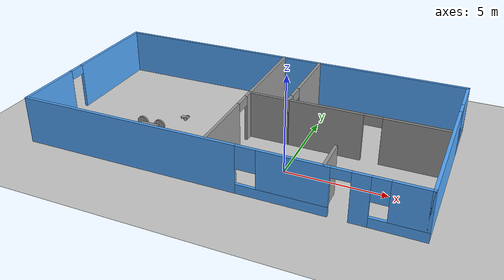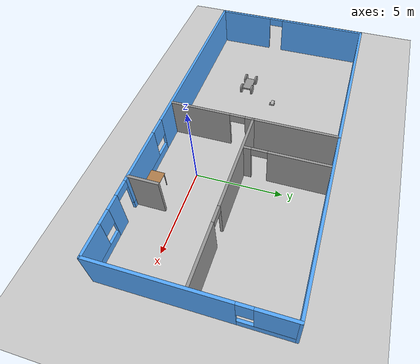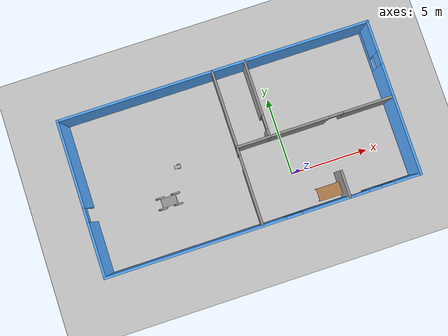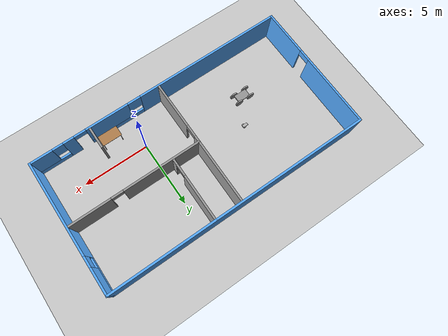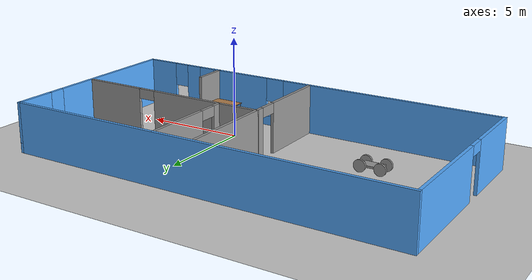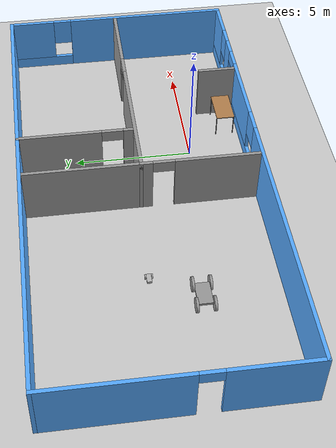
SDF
<sdf version="1.6">
 <world name="default">
  <plugin name="welcome_message" filename="libwelcome_message.so"/>
  <light name="sun" type="directional">
   <pose>0 0 10 0 -0 0</pose>
   <diffuse>0.8 0.8 0.8 1</diffuse>
   <specular>0.2 0.2 0.2 1</specular>
   <attenuation>
    <range>1000</range>
    <constant>0.9</constant>
    <linear>0.01</linear>
    <quadratic>0.001</quadratic>
   </attenuation>
   <direction>-0.5 0.1 -0.9</direction>
  </light>
  <model name="ground_plane">
   <static>1</static>
   <link name="link">
    <collision name="collision">
     <geometry><plane><normal>0 0 1</normal><size>100 100</size></plane></geometry>
     <surface>
      <contact><collide_bitmask>65535</collide_bitmask></contact>
      <friction><ode><mu>100</mu><mu2>50</mu2></ode></friction>
     </surface>
    </collision>
    <visual name="visual">
     <cast_shadows>0</cast_shadows>
     <geometry><plane><normal>0 0 1</normal><size>100 100</size></plane></geometry>
     <material>
      <script><uri>file://media/materials/scripts/gazebo.material</uri><name>Gazebo/Grey</name></script>
     </material>
    </visual>
   </link>
  </model>
  <gravity>0 0 -9.8</gravity>
  <magnetic_field>6e-06 2.3e-05 -4.2e-05</magnetic_field>
  <atmosphere type="adiabatic"/>
  <physics name="default_physics" default="0" type="ode">
   <max_step_size>0.001</max_step_size>
   <real_time_factor>1</real_time_factor>
   <real_time_update_rate>1000</real_time_update_rate>
  </physics>
  <scene><ambient>0.4 0.4 0.4 1</ambient><background>0.7 0.7 0.7 1</background><shadows>1</shadows></scene>
  <spherical_coordinates>
   <surface_model>EARTH_WGS84</surface_model>
   <latitude_deg>0</latitude_deg>
   <longitude_deg>0</longitude_deg>
   <elevation>0</elevation>
   <heading_deg>0</heading_deg>
  </spherical_coordinates>
  <model name="FourWheelRobot">
   <link name="link_0">
    <inertial>
     <mass>1</mass>
     <inertia>
      <ixx>0.166667</ixx>
      <ixy>0</ixy>
      <ixz>0</ixz>
      <iyy>0.166667</iyy>
      <iyz>0</iyz>
      <izz>0.166667</izz>
     </inertia>
    </inertial>
    <visual name="visual">
     <geometry><box><size>1 0.6 0.1</size></box></geometry>
     <material>
      <lighting>1</lighting>
      <script><uri>file://media/materials/scripts/gazebo.material</uri><name>Gazebo/Grey</name></script>
      <shader type="pixel"><normal_map>__default__</normal_map></shader>
      <ambient>0.3 0.3 0.3 1</ambient>
      <diffuse>0.7 0.7 0.7 1</diffuse>
      <specular>0.01 0.01 0.01 1</specular>
      <emissive>0 0 0 1</emissive>
     </material>
    </visual>
    <collision name="collision">
     <geometry><box><size>1 0.6 0.1</size></box></geometry>
     <surface>
      <friction>
       <ode><mu>1</mu><mu2>1</mu2><fdir1>0 0 0</fdir1><slip1>0</slip1><slip2>0</slip2></ode>
       <torsional>
        <coefficient>1</coefficient>
        <patch_radius>0</patch_radius>
        <surface_radius>0</surface_radius>
        <use_patch_radius>1</use_patch_radius>
        <ode><slip>0</slip></ode>
       </torsional>
      </friction>
      <bounce><restitution_coefficient>0</restitution_coefficient><threshold>1e+06</threshold></bounce>
      <contact>
       <collide_without_contact>0</collide_without_contact>
       <collide_without_contact_bitmask>1</collide_without_contact_bitmask>
       <collide_bitmask>1</collide_bitmask>
       <ode>
        <soft_cfm>0</soft_cfm>
        <soft_erp>0.2</soft_erp>
        <kp>1e+13</kp>
        <kd>1</kd>
        <max_vel>0.01</max_vel>
        <min_depth>0</min_depth>
       </ode>
       <bullet>
        <split_impulse>1</split_impulse>
        <split_impulse_penetration_threshold>-0.01</split_impulse_penetration_threshold>
        <soft_cfm>0</soft_cfm>
        <soft_erp>0.2</soft_erp>
        <kp>1e+13</kp>
        <kd>1</kd>
       </bullet>
      </contact>
     </surface>
    </collision>
   </link>
   <link name="link_1">
    <pose>-0.5 -0.350029 0 1.5707 -0 0</pose>
    <inertial>
     <mass>1</mass>
     <inertia><ixx>0.145833</ixx><ixy>0</ixy><ixz>0</ixz><iyy>0.145833</iyy><iyz>0</iyz><izz>0.125</izz></inertia>
    </inertial>
    <visual name="visual">
     <geometry><cylinder><radius>0.3</radius><length>0.1</length></cylinder></geometry>
     <material>
      <lighting>1</lighting>
      <script><uri>file://media/materials/scripts/gazebo.material</uri><name>Gazebo/Grey</name></script>
      <shader type="pixel"><normal_map>__default__</normal_map></shader>
      <ambient>0.3 0.3 0.3 1</ambient>
      <diffuse>0.7 0.7 0.7 1</diffuse>
      <specular>0.01 0.01 0.01 1</specular>
      <emissive>0 0 0 1</emissive>
     </material>
    </visual>
    <collision name="collision">
     <geometry><cylinder><radius>0.3</radius><length>0.1</length></cylinder></geometry>
     <surface>
      <friction>
       <ode><mu>1</mu><mu2>1</mu2><fdir1>0 0 0</fdir1><slip1>0</slip1><slip2>0</slip2></ode>
       <torsional>
        <coefficient>1</coefficient>
        <patch_radius>0</patch_radius>
        <surface_radius>0</surface_radius>
        <use_patch_radius>1</use_patch_radius>
        <ode><slip>0</slip></ode>
       </torsional>
      </friction>
      <bounce><restitution_coefficient>0</restitution_coefficient><threshold>1e+06</threshold></bounce>
      <contact>
       <collide_without_contact>0</collide_without_contact>
       <collide_without_contact_bitmask>1</collide_without_contact_bitmask>
       <collide_bitmask>1</collide_bitmask>
       <ode>
        <soft_cfm>0</soft_cfm>
        <soft_erp>0.2</soft_erp>
        <kp>1e+13</kp>
        <kd>1</kd>
        <max_vel>0.01</max_vel>
        <min_depth>0</min_depth>
       </ode>
       <bullet>
        <split_impulse>1</split_impulse>
        <split_impulse_penetration_threshold>-0.01</split_impulse_penetration_threshold>
        <soft_cfm>0</soft_cfm>
        <soft_erp>0.2</soft_erp>
        <kp>1e+13</kp>
        <kd>1</kd>
       </bullet>
      </contact>
     </surface>
    </collision>
   </link>
   <link name="link_1_clone">
    <pose>-0.5 0.350029 0 1.5707 -0 0</pose>
    <inertial>
     <mass>1</mass>
     <inertia><ixx>0.145833</ixx><ixy>0</ixy><ixz>0</ixz><iyy>0.145833</iyy><iyz>0</iyz><izz>0.125</izz></inertia>
    </inertial>
    <visual name="visual">
     <geometry><cylinder><radius>0.3</radius><length>0.1</length></cylinder></geometry>
     <material>
      <lighting>1</lighting>
      <script><uri>file://media/materials/scripts/gazebo.material</uri><name>Gazebo/Grey</name></script>
      <shader type="pixel"><normal_map>__default__</normal_map></shader>
      <ambient>0.3 0.3 0.3 1</ambient>
      <diffuse>0.7 0.7 0.7 1</diffuse>
      <specular>0.01 0.01 0.01 1</specular>
      <emissive>0 0 0 1</emissive>
     </material>
    </visual>
    <collision name="collision">
     <geometry><cylinder><radius>0.3</radius><length>0.1</length></cylinder></geometry>
     <surface>
      <friction>
       <ode><mu>1</mu><mu2>1</mu2><fdir1>0 0 0</fdir1><slip1>0</slip1><slip2>0</slip2></ode>
       <torsional>
        <coefficient>1</coefficient>
        <patch_radius>0</patch_radius>
        <surface_radius>0</surface_radius>
        <use_patch_radius>1</use_patch_radius>
        <ode><slip>0</slip></ode>
       </torsional>
      </friction>
      <bounce><restitution_coefficient>0</restitution_coefficient><threshold>1e+06</threshold></bounce>
      <contact>
       <collide_without_contact>0</collide_without_contact>
       <collide_without_contact_bitmask>1</collide_without_contact_bitmask>
       <collide_bitmask>1</collide_bitmask>
       <ode>
        <soft_cfm>0</soft_cfm>
        <soft_erp>0.2</soft_erp>
        <kp>1e+13</kp>
        <kd>1</kd>
        <max_vel>0.01</max_vel>
        <min_depth>0</min_depth>
       </ode>
       <bullet>
        <split_impulse>1</split_impulse>
        <split_impulse_penetration_threshold>-0.01</split_impulse_penetration_threshold>
        <soft_cfm>0</soft_cfm>
        <soft_erp>0.2</soft_erp>
        <kp>1e+13</kp>
        <kd>1</kd>
       </bullet>
      </contact>
     </surface>
    </collision>
   </link>
   <link name="link_1_clone_0">
    <pose>0.5 -0.350029 0 1.5707 -0 0</pose>
    <inertial>
     <mass>1</mass>
     <inertia><ixx>0.145833</ixx><ixy>0</ixy><ixz>0</ixz><iyy>0.145833</iyy><iyz>0</iyz><izz>0.125</izz></inertia>
    </inertial>
    <visual name="visual">
     <geometry><cylinder><radius>0.3</radius><length>0.1</length></cylinder></geometry>
     <material>
      <lighting>1</lighting>
      <script><uri>file://media/materials/scripts/gazebo.material</uri><name>Gazebo/Grey</name></script>
      <shader type="pixel"><normal_map>__default__</normal_map></shader>
      <ambient>0.3 0.3 0.3 1</ambient>
      <diffuse>0.7 0.7 0.7 1</diffuse>
      <specular>0.01 0.01 0.01 1</specular>
      <emissive>0 0 0 1</emissive>
     </material>
    </visual>
    <collision name="collision">
     <geometry><cylinder><radius>0.3</radius><length>0.1</length></cylinder></geometry>
     <surface>
      <friction>
       <ode><mu>1</mu><mu2>1</mu2><fdir1>0 0 0</fdir1><slip1>0</slip1><slip2>0</slip2></ode>
       <torsional>
        <coefficient>1</coefficient>
        <patch_radius>0</patch_radius>
        <surface_radius>0</surface_radius>
        <use_patch_radius>1</use_patch_radius>
        <ode><slip>0</slip></ode>
       </torsional>
      </friction>
      <bounce><restitution_coefficient>0</restitution_coefficient><threshold>1e+06</threshold></bounce>
      <contact>
       <collide_without_contact>0</collide_without_contact>
       <collide_without_contact_bitmask>1</collide_without_contact_bitmask>
       <collide_bitmask>1</collide_bitmask>
       <ode>
        <soft_cfm>0</soft_cfm>
        <soft_erp>0.2</soft_erp>
        <kp>1e+13</kp>
        <kd>1</kd>
        <max_vel>0.01</max_vel>
        <min_depth>0</min_depth>
       </ode>
       <bullet>
        <split_impulse>1</split_impulse>
        <split_impulse_penetration_threshold>-0.01</split_impulse_penetration_threshold>
        <soft_cfm>0</soft_cfm>
        <soft_erp>0.2</soft_erp>
        <kp>1e+13</kp>
        <kd>1</kd>
       </bullet>
      </contact>
     </surface>
    </collision>
   </link>
   <link name="link_1_clone_1">
    <pose>0.5 0.350029 0 1.5707 -0 0</pose>
    <inertial>
     <mass>1</mass>
     <inertia><ixx>0.145833</ixx><ixy>0</ixy><ixz>0</ixz><iyy>0.145833</iyy><iyz>0</iyz><izz>0.125</izz></inertia>
    </inertial>
    <visual name="visual">
     <geometry><cylinder><radius>0.3</radius><length>0.1</length></cylinder></geometry>
     <material>
      <lighting>1</lighting>
      <script><uri>file://media/materials/scripts/gazebo.material</uri><name>Gazebo/Grey</name></script>
      <shader type="pixel"><normal_map>__default__</normal_map></shader>
      <ambient>0.3 0.3 0.3 1</ambient>
      <diffuse>0.7 0.7 0.7 1</diffuse>
      <specular>0.01 0.01 0.01 1</specular>
      <emissive>0 0 0 1</emissive>
     </material>
    </visual>
    <collision name="collision">
     <geometry><cylinder><radius>0.3</radius><length>0.1</length></cylinder></geometry>
     <surface>
      <friction>
       <ode><mu>1</mu><mu2>1</mu2><fdir1>0 0 0</fdir1><slip1>0</slip1><slip2>0</slip2></ode>
       <torsional>
        <coefficient>1</coefficient>
        <patch_radius>0</patch_radius>
        <surface_radius>0</surface_radius>
        <use_patch_radius>1</use_patch_radius>
        <ode><slip>0</slip></ode>
       </torsional>
      </friction>
      <bounce><restitution_coefficient>0</restitution_coefficient><threshold>1e+06</threshold></bounce>
      <contact>
       <collide_without_contact>0</collide_without_contact>
       <collide_without_contact_bitmask>1</collide_without_contact_bitmask>
       <collide_bitmask>1</collide_bitmask>
       <ode>
        <soft_cfm>0</soft_cfm>
        <soft_erp>0.2</soft_erp>
        <kp>1e+13</kp>
        <kd>1</kd>
        <max_vel>0.01</max_vel>
        <min_depth>0</min_depth>
       </ode>
       <bullet>
        <split_impulse>1</split_impulse>
        <split_impulse_penetration_threshold>-0.01</split_impulse_penetration_threshold>
        <soft_cfm>0</soft_cfm>
        <soft_erp>0.2</soft_erp>
        <kp>1e+13</kp>
        <kd>1</kd>
       </bullet>
      </contact>
     </surface>
    </collision>
   </link>
   <joint name="link_0_JOINT_1" type="revolute">
    <parent>link_0</parent>
    <child>link_1</child>
    <axis>
     <xyz>0 0 1</xyz>
     <use_parent_model_frame>0</use_parent_model_frame>
     <limit>
      <lower>-1.79769e+308</lower>
      <upper>1.79769e+308</upper>
      <effort>-1</effort>
      <velocity>-1</velocity>
     </limit>
     <dynamics>
      <spring_reference>0</spring_reference>
      <spring_stiffness>0</spring_stiffness>
      <damping>0</damping>
      <friction>0</friction>
     </dynamics>
    </axis>
    <physics>
     <ode><limit><cfm>0</cfm><erp>0.2</erp></limit><suspension><cfm>0</cfm><erp>0.2</erp></suspension></ode>
    </physics>
   </joint>
   <joint name="link_0_JOINT_2" type="revolute">
    <parent>link_0</parent>
    <child>link_1_clone</child>
    <axis>
     <xyz>0 0 1</xyz>
     <use_parent_model_frame>0</use_parent_model_frame>
     <limit>
      <lower>-1.79769e+308</lower>
      <upper>1.79769e+308</upper>
      <effort>-1</effort>
      <velocity>-1</velocity>
     </limit>
     <dynamics>
      <spring_reference>0</spring_reference>
      <spring_stiffness>0</spring_stiffness>
      <damping>0</damping>
      <friction>0</friction>
     </dynamics>
    </axis>
    <physics>
     <ode><limit><cfm>0</cfm><erp>0.2</erp></limit><suspension><cfm>0</cfm><erp>0.2</erp></suspension></ode>
    </physics>
   </joint>
   <joint name="link_0_JOINT_4" type="revolute">
    <parent>link_0</parent>
    <child>link_1_clone_0</child>
    <axis>
     <xyz>0 0 1</xyz>
     <use_parent_model_frame>0</use_parent_model_frame>
     <limit>
      <lower>-1.79769e+308</lower>
      <upper>1.79769e+308</upper>
      <effort>-1</effort>
      <velocity>-1</velocity>
     </limit>
     <dynamics>
      <spring_reference>0</spring_reference>
      <spring_stiffness>0</spring_stiffness>
      <damping>0</damping>
     </dynamics>
    </axis>
    <physics>
     <ode><limit><cfm>0</cfm><erp>0.2</erp></limit><suspension><cfm>0</cfm><erp>0.2</erp></suspension></ode>
    </physics>
   </joint>
   <joint name="link_0_JOINT_5" type="revolute">
    <parent>link_0</parent>
    <child>link_1_clone_1</child>
    <axis>
     <xyz>0 0 1</xyz>
     <use_parent_model_frame>0</use_parent_model_frame>
     <limit>
      <lower>-1.79769e+308</lower>
      <upper>1.79769e+308</upper>
      <effort>-1</effort>
      <velocity>-1</velocity>
     </limit>
     <dynamics>
      <spring_reference>0</spring_reference>
      <spring_stiffness>0</spring_stiffness>
      <damping>0</damping>
      <friction>0</friction>
     </dynamics>
    </axis>
    <physics>
     <ode><limit><cfm>0</cfm><erp>0.2</erp></limit><suspension><cfm>0</cfm><erp>0.2</erp></suspension></ode>
    </physics>
   </joint>
   <static>0</static>
   <pose>-7.95645 0.76925 0.300003 4e-06 -0 7e-06</pose>
   <plugin name="model_push" filename="libmodel_push.so"/>
  </model>
  <model name="Building">
   <pose>-2.8026 2.46672 0 0 -0 0</pose>
   <link name="Wall_12">
    <pose>-9.925 0 0 0 0 -1.5708</pose>
    <visual name="Wall_12_Visual_0">
     <pose>-2.20711 0 1.25 0 -0 0</pose>
     <geometry><box><size>5.58577 0.15 2.5</size></box></geometry>
     <material>
      <script><uri>file://media/materials/scripts/gazebo.material</uri><name>Gazebo/Grey</name></script>
      <ambient>0.333333 0.666667 1 1</ambient>
     </material>
     <meta><layer>0</layer></meta>
    </visual>
    <collision name="Wall_12_Collision_0">
     <geometry><box><size>5.58577 0.15 2.5</size></box></geometry>
     <pose>-2.20711 0 1.25 0 -0 0</pose>
    </collision>
    <visual name="Wall_12_Visual_1">
     <pose>3.24288 0 1.25 0 -0 0</pose>
     <geometry><box><size>3.51423 0.15 2.5</size></box></geometry>
     <material>
      <script><uri>file://media/materials/scripts/gazebo.material</uri><name>Gazebo/Grey</name></script>
      <ambient>0.333333 0.666667 1 1</ambient>
     </material>
     <meta><layer>0</layer></meta>
    </visual>
    <collision name="Wall_12_Collision_1">
     <geometry><box><size>3.51423 0.15 2.5</size></box></geometry>
     <pose>3.24288 0 1.25 0 -0 0</pose>
    </collision>
    <visual name="Wall_12_Visual_2">
     <pose>1.03577 0 2.25 0 -0 0</pose>
     <geometry><box><size>0.9 0.15 0.5</size></box></geometry>
     <material>
      <script><uri>file://media/materials/scripts/gazebo.material</uri><name>Gazebo/Grey</name></script>
      <ambient>0.333333 0.666667 1 1</ambient>
     </material>
     <meta><layer>0</layer></meta>
    </visual>
    <collision name="Wall_12_Collision_2">
     <geometry><box><size>0.9 0.15 0.5</size></box></geometry>
     <pose>1.03577 0 2.25 0 -0 0</pose>
    </collision>
   </link>
   <link name="Wall_13">
    <pose>0 -4.925 0 0 -0 0</pose>
    <visual name="Wall_13_Visual_0">
     <pose>-4.29 0 1.25 0 -0 0</pose>
     <geometry><box><size>11.42 0.15 2.5</size></box></geometry>
     <material>
      <script><uri>file://media/materials/scripts/gazebo.material</uri><name>Gazebo/Grey</name></script>
      <ambient>0.333333 0.666667 1 1</ambient>
     </material>
     <meta><layer>0</layer></meta>
    </visual>
    <collision name="Wall_13_Collision_0">
     <geometry><box><size>11.42 0.15 2.5</size></box></geometry>
     <pose>-4.29 0 1.25 0 -0 0</pose>
    </collision>
    <visual name="Wall_13_Visual_1">
     <pose>7.03883 0 1.25 0 -0 0</pose>
     <geometry><box><size>0.825812 0.15 2.5</size></box></geometry>
     <material>
      <script><uri>file://media/materials/scripts/gazebo.material</uri><name>Gazebo/Grey</name></script>
      <ambient>0.333333 0.666667 1 1</ambient>
     </material>
     <meta><layer>0</layer></meta>
    </visual>
    <collision name="Wall_13_Collision_1">
     <geometry><box><size>0.825812 0.15 2.5</size></box></geometry>
     <pose>7.03883 0 1.25 0 -0 0</pose>
    </collision>
    <visual name="Wall_13_Visual_2">
     <pose>3.57297 0 0.25 0 -0 0</pose>
     <geometry><box><size>4.30591 0.15 0.5</size></box></geometry>
     <material>
      <script><uri>file://media/materials/scripts/gazebo.material</uri><name>Gazebo/Grey</name></script>
      <ambient>0.333333 0.666667 1 1</ambient>
     </material>
     <meta><layer>0</layer></meta>
    </visual>
    <collision name="Wall_13_Collision_2">
     <geometry><box><size>4.30591 0.15 0.5</size></box></geometry>
     <pose>3.57297 0 0.25 0 -0 0</pose>
    </collision>
    <visual name="Wall_13_Visual_3">
     <pose>8.72587 0 0.25 0 -0 0</pose>
     <geometry><box><size>2.54827 0.15 0.5</size></box></geometry>
     <material>
      <script><uri>file://media/materials/scripts/gazebo.material</uri><name>Gazebo/Grey</name></script>
      <ambient>0.333333 0.666667 1 1</ambient>
     </material>
     <meta><layer>0</layer></meta>
    </visual>
    <collision name="Wall_13_Collision_3">
     <geometry><box><size>2.54827 0.15 0.5</size></box></geometry>
     <pose>8.72587 0 0.25 0 -0 0</pose>
    </collision>
    <visual name="Wall_13_Visual_4">
     <pose>4.07297 0 1.5 0 -0 0</pose>
     <geometry><box><size>3.30591 0.15 2</size></box></geometry>
     <material>
      <script><uri>file://media/materials/scripts/gazebo.material</uri><name>Gazebo/Grey</name></script>
      <ambient>0.333333 0.666667 1 1</ambient>
     </material>
     <meta><layer>0</layer></meta>
    </visual>
    <collision name="Wall_13_Collision_4">
     <geometry><box><size>3.30591 0.15 2</size></box></geometry>
     <pose>4.07297 0 1.5 0 -0 0</pose>
    </collision>
    <visual name="Wall_13_Visual_5">
     <pose>4.07297 0 1.5 0 -0 0</pose>
     <geometry><box><size>3.30591 0.15 2</size></box></geometry>
     <material>
      <script><uri>file://media/materials/scripts/gazebo.material</uri><name>Gazebo/Grey</name></script>
      <ambient>0.333333 0.666667 1 1</ambient>
     </material>
     <meta><layer>0</layer></meta>
    </visual>
    <collision name="Wall_13_Collision_5">
     <geometry><box><size>3.30591 0.15 2</size></box></geometry>
     <pose>4.07297 0 1.5 0 -0 0</pose>
    </collision>
    <visual name="Wall_13_Visual_6">
     <pose>9.12587 0 1.5 0 -0 0</pose>
     <geometry><box><size>1.74827 0.15 2</size></box></geometry>
     <material>
      <script><uri>file://media/materials/scripts/gazebo.material</uri><name>Gazebo/Grey</name></script>
      <ambient>0.333333 0.666667 1 1</ambient>
     </material>
     <meta><layer>0</layer></meta>
    </visual>
    <collision name="Wall_13_Collision_6">
     <geometry><box><size>1.74827 0.15 2</size></box></geometry>
     <pose>9.12587 0 1.5 0 -0 0</pose>
    </collision>
    <visual name="Wall_13_Visual_7">
     <pose>1.92001 0 1.9 0 -0 0</pose>
     <geometry><box><size>1 0.15 1.2</size></box></geometry>
     <material>
      <script><uri>file://media/materials/scripts/gazebo.material</uri><name>Gazebo/Grey</name></script>
      <ambient>0.333333 0.666667 1 1</ambient>
     </material>
     <meta><layer>0</layer></meta>
    </visual>
    <collision name="Wall_13_Collision_7">
     <geometry><box><size>1 0.15 1.2</size></box></geometry>
     <pose>1.92001 0 1.9 0 -0 0</pose>
    </collision>
    <visual name="Wall_13_Visual_8">
     <pose>7.85173 0 1.9 0 -0 0</pose>
     <geometry><box><size>0.8 0.15 1.2</size></box></geometry>
     <material>
      <script><uri>file://media/materials/scripts/gazebo.material</uri><name>Gazebo/Grey</name></script>
      <ambient>0.333333 0.666667 1 1</ambient>
     </material>
     <meta><layer>0</layer></meta>
    </visual>
    <collision name="Wall_13_Collision_8">
     <geometry><box><size>0.8 0.15 1.2</size></box></geometry>
     <pose>7.85173 0 1.9 0 -0 0</pose>
    </collision>
    <visual name="Wall_13_Visual_9">
     <pose>6.17592 0 2.25 0 -0 0</pose>
     <geometry><box><size>0.9 0.15 0.5</size></box></geometry>
     <material>
      <script><uri>file://media/materials/scripts/gazebo.material</uri><name>Gazebo/Grey</name></script>
      <ambient>0.333333 0.666667 1 1</ambient>
     </material>
     <meta><layer>0</layer></meta>
    </visual>
    <collision name="Wall_13_Collision_9">
     <geometry><box><size>0.9 0.15 0.5</size></box></geometry>
     <pose>6.17592 0 2.25 0 -0 0</pose>
    </collision>
    <visual name="Wall_13_Visual_10">
     <pose>6.17592 0 2.25 0 -0 0</pose>
     <geometry><box><size>0.9 0.15 0.5</size></box></geometry>
     <material>
      <script><uri>file://media/materials/scripts/gazebo.material</uri><name>Gazebo/Grey</name></script>
      <ambient>0.333333 0.666667 1 1</ambient>
     </material>
     <meta><layer>0</layer></meta>
    </visual>
    <collision name="Wall_13_Collision_10">
     <geometry><box><size>0.9 0.15 0.5</size></box></geometry>
     <pose>6.17592 0 2.25 0 -0 0</pose>
    </collision>
   </link>
   <link name="Wall_14">
    <pose>9.925 0 0 0 -0 1.5708</pose>
    <visual name="Wall_14_Visual_0">
     <pose>-1.42237 0 1.25 0 -0 0</pose>
     <geometry><box><size>7.15526 0.15 2.5</size></box></geometry>
     <material>
      <script><uri>file://media/materials/scripts/gazebo.material</uri><name>Gazebo/Grey</name></script>
      <ambient>0.333333 0.666667 1 1</ambient>
     </material>
     <meta><layer>0</layer></meta>
    </visual>
    <collision name="Wall_14_Collision_0">
     <geometry><box><size>7.15526 0.15 2.5</size></box></geometry>
     <pose>-1.42237 0 1.25 0 -0 0</pose>
    </collision>
    <visual name="Wall_14_Visual_1">
     <pose>3.57763 0 0.25 0 -0 0</pose>
     <geometry><box><size>2.84474 0.15 0.5</size></box></geometry>
     <material>
      <script><uri>file://media/materials/scripts/gazebo.material</uri><name>Gazebo/Grey</name></script>
      <ambient>0.333333 0.666667 1 1</ambient>
     </material>
     <meta><layer>0</layer></meta>
    </visual>
    <collision name="Wall_14_Collision_1">
     <geometry><box><size>2.84474 0.15 0.5</size></box></geometry>
     <pose>3.57763 0 0.25 0 -0 0</pose>
    </collision>
    <visual name="Wall_14_Visual_2">
     <pose>3.97763 0 1.5 0 -0 0</pose>
     <geometry><box><size>2.04474 0.15 2</size></box></geometry>
     <material>
      <script><uri>file://media/materials/scripts/gazebo.material</uri><name>Gazebo/Grey</name></script>
      <ambient>0.333333 0.666667 1 1</ambient>
     </material>
     <meta><layer>0</layer></meta>
    </visual>
    <collision name="Wall_14_Collision_2">
     <geometry><box><size>2.04474 0.15 2</size></box></geometry>
     <pose>3.97763 0 1.5 0 -0 0</pose>
    </collision>
    <visual name="Wall_14_Visual_3">
     <pose>2.55526 0 1.9 0 -0 0</pose>
     <geometry><box><size>0.8 0.15 1.2</size></box></geometry>
     <material>
      <script><uri>file://media/materials/scripts/gazebo.material</uri><name>Gazebo/Grey</name></script>
      <ambient>0.333333 0.666667 1 1</ambient>
     </material>
     <meta><layer>0</layer></meta>
    </visual>
    <collision name="Wall_14_Collision_3">
     <geometry><box><size>0.8 0.15 1.2</size></box></geometry>
     <pose>2.55526 0 1.9 0 -0 0</pose>
    </collision>
   </link>
   <link name="Wall_15">
    <collision name="Wall_15_Collision">
     <geometry><box><size>20 0.15 2.5</size></box></geometry>
     <pose>0 0 1.25 0 -0 0</pose>
    </collision>
    <visual name="Wall_15_Visual">
     <pose>0 0 1.25 0 -0 0</pose>
     <geometry><box><size>20 0.15 2.5</size></box></geometry>
     <material>
      <script><uri>file://media/materials/scripts/gazebo.material</uri><name>Gazebo/Grey</name></script>
      <ambient>0.333333 0.666667 1 1</ambient>
     </material>
     <meta><layer>0</layer></meta>
    </visual>
    <pose>0 4.925 0 0 -0 3.14159</pose>
   </link>
   <link name="Wall_32">
    <collision name="Wall_32_Collision">
     <geometry><box><size>5 0.15 2.5</size></box></geometry>
     <pose>0 0 1.25 0 -0 0</pose>
    </collision>
    <visual name="Wall_32_Visual">
     <pose>0 0 1.25 0 -0 0</pose>
     <geometry><box><size>5 0.15 2.5</size></box></geometry>
     <material>
      <script><uri>file://media/materials/scripts/gazebo.material</uri><name>Gazebo/Grey</name></script>
      <ambient>1 1 1 1</ambient>
     </material>
     <meta><layer>0</layer></meta>
    </visual>
    <pose>-0.075125 2.47107 0 0 0 -1.5708</pose>
   </link>
   <link name="Wall_33">
    <pose>4.84987 0.046075 0 0 -0 0</pose>
    <visual name="Wall_33_Visual_0">
     <pose>-2.02208 0 1.25 0 -0 0</pose>
     <geometry><box><size>5.95585 0.15 2.5</size></box></geometry>
     <material>
      <script><uri>file://media/materials/scripts/gazebo.material</uri><name>Gazebo/Grey</name></script>
      <ambient>1 1 1 1</ambient>
     </material>
     <meta><layer>0</layer></meta>
    </visual>
    <collision name="Wall_33_Collision_0">
     <geometry><box><size>5.95585 0.15 2.5</size></box></geometry>
     <pose>-2.02208 0 1.25 0 -0 0</pose>
    </collision>
    <visual name="Wall_33_Visual_1">
     <pose>3.42792 0 1.25 0 -0 0</pose>
     <geometry><box><size>3.14415 0.15 2.5</size></box></geometry>
     <material>
      <script><uri>file://media/materials/scripts/gazebo.material</uri><name>Gazebo/Grey</name></script>
      <ambient>1 1 1 1</ambient>
     </material>
     <meta><layer>0</layer></meta>
    </visual>
    <collision name="Wall_33_Collision_1">
     <geometry><box><size>3.14415 0.15 2.5</size></box></geometry>
     <pose>3.42792 0 1.25 0 -0 0</pose>
    </collision>
    <visual name="Wall_33_Visual_2">
     <pose>1.40585 0 2.25 0 -0 0</pose>
     <geometry><box><size>0.9 0.15 0.5</size></box></geometry>
     <material>
      <script><uri>file://media/materials/scripts/gazebo.material</uri><name>Gazebo/Grey</name></script>
      <ambient>1 1 1 1</ambient>
     </material>
     <meta><layer>0</layer></meta>
    </visual>
    <collision name="Wall_33_Collision_2">
     <geometry><box><size>0.9 0.15 0.5</size></box></geometry>
     <pose>1.40585 0 2.25 0 -0 0</pose>
    </collision>
   </link>
   <link name="Wall_35">
    <pose>1.99969 2.47107 0 0 0 -1.5708</pose>
    <visual name="Wall_35_Visual_0">
     <pose>-0.732385 0 1.25 0 -0 0</pose>
     <geometry><box><size>3.53523 0.15 2.5</size></box></geometry>
     <material>
      <script><uri>file://media/materials/scripts/gazebo.material</uri><name>Gazebo/Grey</name></script>
      <ambient>1 1 1 1</ambient>
     </material>
     <meta><layer>0</layer></meta>
    </visual>
    <collision name="Wall_35_Collision_0">
     <geometry><box><size>3.53523 0.15 2.5</size></box></geometry>
     <pose>-0.732385 0 1.25 0 -0 0</pose>
    </collision>
    <visual name="Wall_35_Visual_1">
     <pose>2.21761 0 1.25 0 -0 0</pose>
     <geometry><box><size>0.564771 0.15 2.5</size></box></geometry>
     <material>
      <script><uri>file://media/materials/scripts/gazebo.material</uri><name>Gazebo/Grey</name></script>
      <ambient>1 1 1 1</ambient>
     </material>
     <meta><layer>0</layer></meta>
    </visual>
    <collision name="Wall_35_Collision_1">
     <geometry><box><size>0.564771 0.15 2.5</size></box></geometry>
     <pose>2.21761 0 1.25 0 -0 0</pose>
    </collision>
    <visual name="Wall_35_Visual_2">
     <pose>1.48523 0 2.25 0 -0 0</pose>
     <geometry><box><size>0.9 0.15 0.5</size></box></geometry>
     <material>
      <script><uri>file://media/materials/scripts/gazebo.material</uri><name>Gazebo/Grey</name></script>
      <ambient>1 1 1 1</ambient>
     </material>
     <meta><layer>0</layer></meta>
    </visual>
    <collision name="Wall_35_Collision_2">
     <geometry><box><size>0.9 0.15 0.5</size></box></geometry>
     <pose>1.48523 0 2.25 0 -0 0</pose>
    </collision>
   </link>
   <link name="Wall_37">
    <pose>-0.075125 -2.37893 0 0 0 -1.5708</pose>
    <visual name="Wall_37_Visual_0">
     <pose>-2.22638 0 1.25 0 -0 0</pose>
     <geometry><box><size>0.547243 0.15 2.5</size></box></geometry>
     <material>
      <script><uri>file://media/materials/scripts/gazebo.material</uri><name>Gazebo/Grey</name></script>
      <ambient>1 1 1 1</ambient>
     </material>
     <meta><layer>0</layer></meta>
    </visual>
    <collision name="Wall_37_Collision_0">
     <geometry><box><size>0.547243 0.15 2.5</size></box></geometry>
     <pose>-2.22638 0 1.25 0 -0 0</pose>
    </collision>
    <visual name="Wall_37_Visual_1">
     <pose>0.723622 0 1.25 0 -0 0</pose>
     <geometry><box><size>3.55276 0.15 2.5</size></box></geometry>
     <material>
      <script><uri>file://media/materials/scripts/gazebo.material</uri><name>Gazebo/Grey</name></script>
      <ambient>1 1 1 1</ambient>
     </material>
     <meta><layer>0</layer></meta>
    </visual>
    <collision name="Wall_37_Collision_1">
     <geometry><box><size>3.55276 0.15 2.5</size></box></geometry>
     <pose>0.723622 0 1.25 0 -0 0</pose>
    </collision>
    <visual name="Wall_37_Visual_2">
     <pose>-1.50276 0 2.25 0 -0 0</pose>
     <geometry><box><size>0.9 0.15 0.5</size></box></geometry>
     <material>
      <script><uri>file://media/materials/scripts/gazebo.material</uri><name>Gazebo/Grey</name></script>
      <ambient>1 1 1 1</ambient>
     </material>
     <meta><layer>0</layer></meta>
    </visual>
    <collision name="Wall_37_Collision_2">
     <geometry><box><size>0.9 0.15 0.5</size></box></geometry>
     <pose>-1.50276 0 2.25 0 -0 0</pose>
    </collision>
   </link>
   <link name="Wall_39">
    <collision name="Wall_39_Collision">
     <geometry><box><size>1.75 0.15 2.5</size></box></geometry>
     <pose>0 0 1.25 0 -0 0</pose>
    </collision>
    <visual name="Wall_39_Visual">
     <pose>0 0 1.25 0 -0 0</pose>
     <geometry><box><size>1.75 0.15 2.5</size></box></geometry>
     <material>
      <script><uri>file://media/materials/scripts/gazebo.material</uri><name>Gazebo/Grey</name></script>
      <ambient>1 1 1 1</ambient>
     </material>
     <meta><layer>0</layer></meta>
    </visual>
    <pose>5.43112 -4.0928 0 0 -0 1.5708</pose>
   </link>
   <static>1</static>
  </model>
  <model name="TwoWheelRobot">
   <static>0</static>
   <link name="chassis">
    <pose>0 0 0.1 0 -0 0</pose>
    <collision name="collision"><geometry><box><size>0.4 0.2 0.1</size></box></geometry></collision>
    <visual name="visual"><geometry><box><size>0.4 0.2 0.1</size></box></geometry></visual>
    <collision name="caster_collision">
     <pose>-0.15 0 -0.05 0 -0 0</pose>
     <geometry><sphere><radius>0.05</radius></sphere></geometry>
     <surface><friction><ode><mu>0</mu><mu2>0</mu2><slip1>1</slip1><slip2>1</slip2></ode></friction></surface>
    </collision>
    <visual name="caster_visual">
     <pose>-0.15 0 -0.05 0 -0 0</pose>
     <geometry><sphere><radius>0.05</radius></sphere></geometry>
    </visual>
    <inertial>
     <inertia><ixx>1</ixx><ixy>0</ixy><ixz>0</ixz><iyy>1</iyy><iyz>0</iyz><izz>1</izz></inertia>
     <mass>1</mass>
    </inertial>
   </link>
   <link name="left_wheel">
    <pose>0.1 0.13 0.1 -0 1.5707 1.5707</pose>
    <collision name="collision">
     <geometry><cylinder><radius>0.1</radius><length>0.05</length></cylinder></geometry>
    </collision>
    <visual name="visual">
     <geometry><cylinder><radius>0.1</radius><length>0.05</length></cylinder></geometry>
    </visual>
    <inertial>
     <inertia><ixx>1</ixx><ixy>0</ixy><ixz>0</ixz><iyy>1</iyy><iyz>0</iyz><izz>1</izz></inertia>
     <mass>1</mass>
    </inertial>
   </link>
   <link name="right_wheel">
    <pose>0.1 -0.13 0.1 -0 1.5707 1.5707</pose>
    <collision name="collision">
     <geometry><cylinder><radius>0.1</radius><length>0.05</length></cylinder></geometry>
    </collision>
    <visual name="visual">
     <geometry><cylinder><radius>0.1</radius><length>0.05</length></cylinder></geometry>
    </visual>
    <inertial>
     <inertia><ixx>1</ixx><ixy>0</ixy><ixz>0</ixz><iyy>1</iyy><iyz>0</iyz><izz>1</izz></inertia>
     <mass>1</mass>
    </inertial>
   </link>
   <joint name="left_wheel_hinge" type="revolute">
    <pose>0 0 -0.03 0 -0 0</pose>
    <child>left_wheel</child>
    <parent>chassis</parent>
    <axis>
     <xyz>0 1 0</xyz>
     <use_parent_model_frame>1</use_parent_model_frame>
     <limit><lower>-1e+16</lower><upper>1e+16</upper></limit>
     <dynamics><spring_reference>0</spring_reference><spring_stiffness>0</spring_stiffness></dynamics>
    </axis>
   </joint>
   <joint name="right_wheel_hinge" type="revolute">
    <pose>0 0 0.03 0 -0 0</pose>
    <child>right_wheel</child>
    <parent>chassis</parent>
    <axis>
     <xyz>0 1 0</xyz>
     <use_parent_model_frame>1</use_parent_model_frame>
     <limit><lower>-1e+16</lower><upper>1e+16</upper></limit>
     <dynamics><spring_reference>0</spring_reference><spring_stiffness>0</spring_stiffness></dynamics>
    </axis>
   </joint>
   <pose>-6.82264 2.71336 0 0 -0 0</pose>
   <plugin name="model_push" filename="libmodel_push.so"/>
  </model>
  <model name="table">
   <static>1</static>
   <link name="link">
    <collision name="surface">
     <pose>0 0 1 0 -0 0</pose>
     <geometry><box><size>1.5 0.8 0.03</size></box></geometry>
     <surface><friction><ode><mu>0.6</mu><mu2>0.6</mu2></ode></friction></surface>
    </collision>
    <visual name="visual1">
     <pose>0 0 1 0 -0 0</pose>
     <geometry><box><size>1.5 0.8 0.03</size></box></geometry>
     <material>
      <script><uri>file://media/materials/scripts/gazebo.material</uri><name>Gazebo/Wood</name></script>
     </material>
    </visual>
    <collision name="front_left_leg">
     <pose>0.68 0.38 0.5 0 -0 0</pose>
     <geometry><cylinder><radius>0.02</radius><length>1</length></cylinder></geometry>
    </collision>
    <visual name="front_left_leg">
     <pose>0.68 0.38 0.5 0 -0 0</pose>
     <geometry><cylinder><radius>0.02</radius><length>1</length></cylinder></geometry>
     <material>
      <script><uri>file://media/materials/scripts/gazebo.material</uri><name>Gazebo/Grey</name></script>
     </material>
    </visual>
    <collision name="front_right_leg">
     <pose>0.68 -0.38 0.5 0 -0 0</pose>
     <geometry><cylinder><radius>0.02</radius><length>1</length></cylinder></geometry>
    </collision>
    <visual name="front_right_leg">
     <pose>0.68 -0.38 0.5 0 -0 0</pose>
     <geometry><cylinder><radius>0.02</radius><length>1</length></cylinder></geometry>
     <material>
      <script><uri>file://media/materials/scripts/gazebo.material</uri><name>Gazebo/Grey</name></script>
     </material>
    </visual>
    <collision name="back_right_leg">
     <pose>-0.68 -0.38 0.5 0 -0 0</pose>
     <geometry><cylinder><radius>0.02</radius><length>1</length></cylinder></geometry>
    </collision>
    <visual name="back_right_leg">
     <pose>-0.68 -0.38 0.5 0 -0 0</pose>
     <geometry><cylinder><radius>0.02</radius><length>1</length></cylinder></geometry>
     <material>
      <script><uri>file://media/materials/scripts/gazebo.material</uri><name>Gazebo/Grey</name></script>
     </material>
    </visual>
    <collision name="back_left_leg">
     <pose>-0.68 0.38 0.5 0 -0 0</pose>
     <geometry><cylinder><radius>0.02</radius><length>1</length></cylinder></geometry>
    </collision>
    <visual name="back_left_leg">
     <pose>-0.68 0.38 0.5 0 -0 0</pose>
     <geometry><cylinder><radius>0.02</radius><length>1</length></cylinder></geometry>
     <material>
      <script><uri>file://media/materials/scripts/gazebo.material</uri><name>Gazebo/Grey</name></script>
     </material>
    </visual>
   </link>
   <pose>1.77024 -1.77896 0 0 -0 0</pose>
  </model>
 </world>
</sdf>
